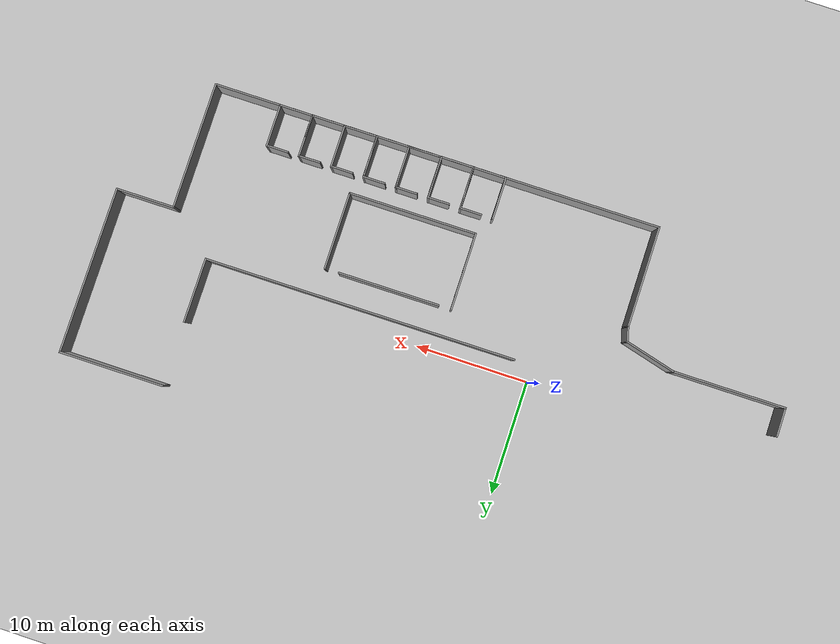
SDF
<sdf version="1.6">
 <world name="default">
  <model name="ground_plane">
   <static>1</static>
   <link name="link">
    <collision name="collision">
     <geometry><plane><normal>0 0 1</normal><size>100 100</size></plane></geometry>
     <surface><friction><ode><mu>100</mu><mu2>50</mu2></ode></friction></surface>
    </collision>
    <visual name="visual">
     <cast_shadows>0</cast_shadows>
     <geometry><plane><normal>0 0 1</normal><size>100 100</size></plane></geometry>
     <material>
      <script><uri>file://media/materials/scripts/gazebo.material</uri><name>Gazebo/Grey</name></script>
     </material>
    </visual>
   </link>
  </model>
  <model name="Floor5">
   <link name="Wall_16">
    <pose>6.84345 1.622 0 0 -0 0</pose>
    <inertial>
     <inertia><ixx>0</ixx><ixy>0</ixy><ixz>0</ixz><iyy>0</iyy><iyz>0</iyz><izz>0</izz></inertia>
     <mass>0</mass>
    </inertial>
    <visual name="Wall_16_Visual">
     <pose>0 0 1.25 0 -0 0</pose>
     <geometry><box><size>27.5952 0.15 2.5</size></box></geometry>
     <material>
      <script><uri>file://media/materials/scripts/gazebo.material</uri><name>Gazebo/Grey</name></script>
      <ambient>1 1 1 1</ambient>
      <shader type="pixel"/>
     </material>
     <meta><layer>0</layer></meta>
    </visual>
    <collision name="Wall_16_Collision">
     <pose>0 0 1.25 0 -0 0</pose>
     <geometry><box><size>27.5952 0.15 2.5</size></box></geometry>
     <surface>
      <friction>
       <ode><mu>1</mu><mu2>1</mu2><fdir1>0 0 0</fdir1><slip1>0</slip1><slip2>0</slip2></ode>
       <torsional>
        <coefficient>1</coefficient>
        <patch_radius>0</patch_radius>
        <surface_radius>0</surface_radius>
        <use_patch_radius>1</use_patch_radius>
        <ode><slip>0</slip></ode>
       </torsional>
      </friction>
      <bounce><restitution_coefficient>0</restitution_coefficient><threshold>1e+06</threshold></bounce>
      <contact>
       <collide_without_contact>0</collide_without_contact>
       <collide_without_contact_bitmask>1</collide_without_contact_bitmask>
       <collide_bitmask>1</collide_bitmask>
       <ode>
        <soft_cfm>0</soft_cfm>
        <soft_erp>0.2</soft_erp>
        <kp>1e+13</kp>
        <kd>1</kd>
        <max_vel>0.01</max_vel>
        <min_depth>0</min_depth>
       </ode>
       <bullet>
        <split_impulse>1</split_impulse>
        <split_impulse_penetration_threshold>-0.01</split_impulse_penetration_threshold>
        <soft_cfm>0</soft_cfm>
        <soft_erp>0.2</soft_erp>
        <kp>1e+13</kp>
        <kd>1</kd>
       </bullet>
      </contact>
     </surface>
    </collision>
   </link>
   <link name="Wall_17">
    <pose>20.6316 4.41059 0 0 -0 1.5708</pose>
    <inertial>
     <inertia><ixx>0</ixx><ixy>0</ixy><ixz>0</ixz><iyy>0</iyy><iyz>0</iyz><izz>0</izz></inertia>
     <mass>0</mass>
    </inertial>
    <visual name="Wall_17_Visual">
     <pose>0 0 1.25 0 -0 0</pose>
     <geometry><box><size>5.7381 0.15 2.5</size></box></geometry>
     <material>
      <script><uri>file://media/materials/scripts/gazebo.material</uri><name>Gazebo/Grey</name></script>
      <ambient>1 1 1 1</ambient>
      <shader type="pixel"/>
     </material>
     <meta><layer>0</layer></meta>
    </visual>
    <collision name="Wall_17_Collision">
     <pose>0 0 1.25 0 -0 0</pose>
     <geometry><box><size>5.7381 0.15 2.5</size></box></geometry>
     <surface>
      <friction>
       <ode><mu>1</mu><mu2>1</mu2><fdir1>0 0 0</fdir1><slip1>0</slip1><slip2>0</slip2></ode>
       <torsional>
        <coefficient>1</coefficient>
        <patch_radius>0</patch_radius>
        <surface_radius>0</surface_radius>
        <use_patch_radius>1</use_patch_radius>
        <ode><slip>0</slip></ode>
       </torsional>
      </friction>
      <bounce><restitution_coefficient>0</restitution_coefficient><threshold>1e+06</threshold></bounce>
      <contact>
       <collide_without_contact>0</collide_without_contact>
       <collide_without_contact_bitmask>1</collide_without_contact_bitmask>
       <collide_bitmask>1</collide_bitmask>
       <ode>
        <soft_cfm>0</soft_cfm>
        <soft_erp>0.2</soft_erp>
        <kp>1e+13</kp>
        <kd>1</kd>
        <max_vel>0.01</max_vel>
        <min_depth>0</min_depth>
       </ode>
       <bullet>
        <split_impulse>1</split_impulse>
        <split_impulse_penetration_threshold>-0.01</split_impulse_penetration_threshold>
        <soft_cfm>0</soft_cfm>
        <soft_erp>0.2</soft_erp>
        <kp>1e+13</kp>
        <kd>1</kd>
       </bullet>
      </contact>
     </surface>
    </collision>
   </link>
   <link name="Wall_18">
    <pose>25.2001 12.902 0 0 -0 0</pose>
    <visual name="Wall_18_Visual">
     <pose>0 0 1.25 0 -0 0</pose>
     <geometry><box><size>9.287 0.15 2.5</size></box></geometry>
     <material>
      <script><uri>file://media/materials/scripts/gazebo.material</uri><name>Gazebo/Grey</name></script>
      <ambient>1 1 1 1</ambient>
      <shader type="pixel"/>
     </material>
     <meta><layer>0</layer></meta>
    </visual>
    <collision name="Wall_18_Collision">
     <pose>0 0 1.25 0 -0 0</pose>
     <geometry><box><size>9.287 0.15 2.5</size></box></geometry>
     <surface>
      <friction>
       <ode><mu>1</mu><mu2>1</mu2><fdir1>0 0 0</fdir1><slip1>0</slip1><slip2>0</slip2></ode>
       <torsional>
        <coefficient>1</coefficient>
        <patch_radius>0</patch_radius>
        <surface_radius>0</surface_radius>
        <use_patch_radius>1</use_patch_radius>
        <ode><slip>0</slip></ode>
       </torsional>
      </friction>
      <bounce><restitution_coefficient>0</restitution_coefficient><threshold>1e+06</threshold></bounce>
      <contact>
       <collide_without_contact>0</collide_without_contact>
       <collide_without_contact_bitmask>1</collide_without_contact_bitmask>
       <collide_bitmask>1</collide_bitmask>
       <ode>
        <soft_cfm>0</soft_cfm>
        <soft_erp>0.2</soft_erp>
        <kp>1e+13</kp>
        <kd>1</kd>
        <max_vel>0.01</max_vel>
        <min_depth>0</min_depth>
       </ode>
       <bullet>
        <split_impulse>1</split_impulse>
        <split_impulse_penetration_threshold>-0.01</split_impulse_penetration_threshold>
        <soft_cfm>0</soft_cfm>
        <soft_erp>0.2</soft_erp>
        <kp>1e+13</kp>
        <kd>1</kd>
       </bullet>
      </contact>
     </surface>
    </collision>
   </link>
   <link name="Wall_19">
    <pose>29.7686 5.595 0 0 0 -1.5708</pose>
    <visual name="Wall_19_Visual">
     <pose>0 0 1.25 0 -0 0</pose>
     <geometry><box><size>14.764 0.15 2.5</size></box></geometry>
     <material>
      <script><uri>file://media/materials/scripts/gazebo.material</uri><name>Gazebo/Grey</name></script>
      <ambient>1 1 1 1</ambient>
      <shader type="pixel"/>
     </material>
     <meta><layer>0</layer></meta>
    </visual>
    <collision name="Wall_19_Collision">
     <pose>0 0 1.25 0 -0 0</pose>
     <geometry><box><size>14.764 0.15 2.5</size></box></geometry>
     <surface>
      <friction>
       <ode><mu>1</mu><mu2>1</mu2><fdir1>0 0 0</fdir1><slip1>0</slip1><slip2>0</slip2></ode>
       <torsional>
        <coefficient>1</coefficient>
        <patch_radius>0</patch_radius>
        <surface_radius>0</surface_radius>
        <use_patch_radius>1</use_patch_radius>
        <ode><slip>0</slip></ode>
       </torsional>
      </friction>
      <bounce><restitution_coefficient>0</restitution_coefficient><threshold>1e+06</threshold></bounce>
      <contact>
       <collide_without_contact>0</collide_without_contact>
       <collide_without_contact_bitmask>1</collide_without_contact_bitmask>
       <collide_bitmask>1</collide_bitmask>
       <ode>
        <soft_cfm>0</soft_cfm>
        <soft_erp>0.2</soft_erp>
        <kp>1e+13</kp>
        <kd>1</kd>
        <max_vel>0.01</max_vel>
        <min_depth>0</min_depth>
       </ode>
       <bullet>
        <split_impulse>1</split_impulse>
        <split_impulse_penetration_threshold>-0.01</split_impulse_penetration_threshold>
        <soft_cfm>0</soft_cfm>
        <soft_erp>0.2</soft_erp>
        <kp>1e+13</kp>
        <kd>1</kd>
       </bullet>
      </contact>
     </surface>
    </collision>
   </link>
   <link name="Wall_20">
    <pose>27.2241 -1.712 0 0 -0 3.14159</pose>
    <visual name="Wall_20_Visual">
     <pose>0 0 1.25 0 -0 0</pose>
     <geometry><box><size>5.239 0.15 2.5</size></box></geometry>
     <material>
      <script><uri>file://media/materials/scripts/gazebo.material</uri><name>Gazebo/Grey</name></script>
      <ambient>1 1 1 1</ambient>
      <shader type="pixel"/>
     </material>
     <meta><layer>0</layer></meta>
    </visual>
    <collision name="Wall_20_Collision">
     <pose>0 0 1.25 0 -0 0</pose>
     <geometry><box><size>5.239 0.15 2.5</size></box></geometry>
     <surface>
      <friction>
       <ode><mu>1</mu><mu2>1</mu2><fdir1>0 0 0</fdir1><slip1>0</slip1><slip2>0</slip2></ode>
       <torsional>
        <coefficient>1</coefficient>
        <patch_radius>0</patch_radius>
        <surface_radius>0</surface_radius>
        <use_patch_radius>1</use_patch_radius>
        <ode><slip>0</slip></ode>
       </torsional>
      </friction>
      <bounce><restitution_coefficient>0</restitution_coefficient><threshold>1e+06</threshold></bounce>
      <contact>
       <collide_without_contact>0</collide_without_contact>
       <collide_without_contact_bitmask>1</collide_without_contact_bitmask>
       <collide_bitmask>1</collide_bitmask>
       <ode>
        <soft_cfm>0</soft_cfm>
        <soft_erp>0.2</soft_erp>
        <kp>1e+13</kp>
        <kd>1</kd>
        <max_vel>0.01</max_vel>
        <min_depth>0</min_depth>
       </ode>
       <bullet>
        <split_impulse>1</split_impulse>
        <split_impulse_penetration_threshold>-0.01</split_impulse_penetration_threshold>
        <soft_cfm>0</soft_cfm>
        <soft_erp>0.2</soft_erp>
        <kp>1e+13</kp>
        <kd>1</kd>
       </bullet>
      </contact>
     </surface>
    </collision>
   </link>
   <link name="Wall_21">
    <pose>24.6796 -7.307 0 0 0 -1.5708</pose>
    <visual name="Wall_21_Visual">
     <pose>0 0 1.25 0 -0 0</pose>
     <geometry><box><size>11.34 0.15 2.5</size></box></geometry>
     <material>
      <script><uri>file://media/materials/scripts/gazebo.material</uri><name>Gazebo/Grey</name></script>
      <ambient>1 1 1 1</ambient>
      <shader type="pixel"/>
     </material>
     <meta><layer>0</layer></meta>
    </visual>
    <collision name="Wall_21_Collision">
     <pose>0 0 1.25 0 -0 0</pose>
     <geometry><box><size>11.34 0.15 2.5</size></box></geometry>
     <surface>
      <friction>
       <ode><mu>1</mu><mu2>1</mu2><fdir1>0 0 0</fdir1><slip1>0</slip1><slip2>0</slip2></ode>
       <torsional>
        <coefficient>1</coefficient>
        <patch_radius>0</patch_radius>
        <surface_radius>0</surface_radius>
        <use_patch_radius>1</use_patch_radius>
        <ode><slip>0</slip></ode>
       </torsional>
      </friction>
      <bounce><restitution_coefficient>0</restitution_coefficient><threshold>1e+06</threshold></bounce>
      <contact>
       <collide_without_contact>0</collide_without_contact>
       <collide_without_contact_bitmask>1</collide_without_contact_bitmask>
       <collide_bitmask>1</collide_bitmask>
       <ode>
        <soft_cfm>0</soft_cfm>
        <soft_erp>0.2</soft_erp>
        <kp>1e+13</kp>
        <kd>1</kd>
        <max_vel>0.01</max_vel>
        <min_depth>0</min_depth>
       </ode>
       <bullet>
        <split_impulse>1</split_impulse>
        <split_impulse_penetration_threshold>-0.01</split_impulse_penetration_threshold>
        <soft_cfm>0</soft_cfm>
        <soft_erp>0.2</soft_erp>
        <kp>1e+13</kp>
        <kd>1</kd>
       </bullet>
      </contact>
     </surface>
    </collision>
   </link>
   <link name="Wall_22">
    <pose>4.7546 -12.902 0 0 -0 3.14159</pose>
    <visual name="Wall_22_Visual">
     <pose>0 0 1.25 0 -0 0</pose>
     <geometry><box><size>40 0.15 2.5</size></box></geometry>
     <material>
      <script><uri>file://media/materials/scripts/gazebo.material</uri><name>Gazebo/Grey</name></script>
      <ambient>1 1 1 1</ambient>
      <shader type="pixel"/>
     </material>
     <meta><layer>0</layer></meta>
    </visual>
    <collision name="Wall_22_Collision">
     <pose>0 0 1.25 0 -0 0</pose>
     <geometry><box><size>40 0.15 2.5</size></box></geometry>
     <surface>
      <friction>
       <ode><mu>1</mu><mu2>1</mu2><fdir1>0 0 0</fdir1><slip1>0</slip1><slip2>0</slip2></ode>
       <torsional>
        <coefficient>1</coefficient>
        <patch_radius>0</patch_radius>
        <surface_radius>0</surface_radius>
        <use_patch_radius>1</use_patch_radius>
        <ode><slip>0</slip></ode>
       </torsional>
      </friction>
      <bounce><restitution_coefficient>0</restitution_coefficient><threshold>1e+06</threshold></bounce>
      <contact>
       <collide_without_contact>0</collide_without_contact>
       <collide_without_contact_bitmask>1</collide_without_contact_bitmask>
       <collide_bitmask>1</collide_bitmask>
       <ode>
        <soft_cfm>0</soft_cfm>
        <soft_erp>0.2</soft_erp>
        <kp>1e+13</kp>
        <kd>1</kd>
        <max_vel>0.01</max_vel>
        <min_depth>0</min_depth>
       </ode>
       <bullet>
        <split_impulse>1</split_impulse>
        <split_impulse_penetration_threshold>-0.01</split_impulse_penetration_threshold>
        <soft_cfm>0</soft_cfm>
        <soft_erp>0.2</soft_erp>
        <kp>1e+13</kp>
        <kd>1</kd>
       </bullet>
      </contact>
     </surface>
    </collision>
   </link>
   <link name="Wall_23">
    <pose>-15.1704 -8.4525 0 0 -0 1.5708</pose>
    <visual name="Wall_23_Visual">
     <pose>0 0 1.25 0 -0 0</pose>
     <geometry><box><size>9.049 0.15 2.5</size></box></geometry>
     <material>
      <script><uri>file://media/materials/scripts/gazebo.material</uri><name>Gazebo/Grey</name></script>
      <ambient>1 1 1 1</ambient>
      <shader type="pixel"/>
     </material>
     <meta><layer>0</layer></meta>
    </visual>
    <collision name="Wall_23_Collision">
     <pose>0 0 1.25 0 -0 0</pose>
     <geometry><box><size>9.049 0.15 2.5</size></box></geometry>
     <surface>
      <friction>
       <ode><mu>1</mu><mu2>1</mu2><fdir1>0 0 0</fdir1><slip1>0</slip1><slip2>0</slip2></ode>
       <torsional>
        <coefficient>1</coefficient>
        <patch_radius>0</patch_radius>
        <surface_radius>0</surface_radius>
        <use_patch_radius>1</use_patch_radius>
        <ode><slip>0</slip></ode>
       </torsional>
      </friction>
      <bounce><restitution_coefficient>0</restitution_coefficient><threshold>1e+06</threshold></bounce>
      <contact>
       <collide_without_contact>0</collide_without_contact>
       <collide_without_contact_bitmask>1</collide_without_contact_bitmask>
       <collide_bitmask>1</collide_bitmask>
       <ode>
        <soft_cfm>0</soft_cfm>
        <soft_erp>0.2</soft_erp>
        <kp>1e+13</kp>
        <kd>1</kd>
        <max_vel>0.01</max_vel>
        <min_depth>0</min_depth>
       </ode>
       <bullet>
        <split_impulse>1</split_impulse>
        <split_impulse_penetration_threshold>-0.01</split_impulse_penetration_threshold>
        <soft_cfm>0</soft_cfm>
        <soft_erp>0.2</soft_erp>
        <kp>1e+13</kp>
        <kd>1</kd>
       </bullet>
      </contact>
     </surface>
    </collision>
   </link>
   <link name="Wall_24">
    <pose>-15.3359 -3.38529 0 0 -0 1.8326</pose>
    <visual name="Wall_24_Visual">
     <pose>0 0 1.25 0 -0 0</pose>
     <geometry><box><size>1.429 0.15 2.5</size></box></geometry>
     <material>
      <script><uri>file://media/materials/scripts/gazebo.material</uri><name>Gazebo/Grey</name></script>
      <ambient>1 1 1 1</ambient>
      <shader type="pixel"/>
     </material>
     <meta><layer>0</layer></meta>
    </visual>
    <collision name="Wall_24_Collision">
     <pose>0 0 1.25 0 -0 0</pose>
     <geometry><box><size>1.429 0.15 2.5</size></box></geometry>
     <surface>
      <friction>
       <ode><mu>1</mu><mu2>1</mu2><fdir1>0 0 0</fdir1><slip1>0</slip1><slip2>0</slip2></ode>
       <torsional>
        <coefficient>1</coefficient>
        <patch_radius>0</patch_radius>
        <surface_radius>0</surface_radius>
        <use_patch_radius>1</use_patch_radius>
        <ode><slip>0</slip></ode>
       </torsional>
      </friction>
      <bounce><restitution_coefficient>0</restitution_coefficient><threshold>1e+06</threshold></bounce>
      <contact>
       <collide_without_contact>0</collide_without_contact>
       <collide_without_contact_bitmask>1</collide_without_contact_bitmask>
       <collide_bitmask>1</collide_bitmask>
       <ode>
        <soft_cfm>0</soft_cfm>
        <soft_erp>0.2</soft_erp>
        <kp>1e+13</kp>
        <kd>1</kd>
        <max_vel>0.01</max_vel>
        <min_depth>0</min_depth>
       </ode>
       <bullet>
        <split_impulse>1</split_impulse>
        <split_impulse_penetration_threshold>-0.01</split_impulse_penetration_threshold>
        <soft_cfm>0</soft_cfm>
        <soft_erp>0.2</soft_erp>
        <kp>1e+13</kp>
        <kd>1</kd>
       </bullet>
      </contact>
     </surface>
    </collision>
   </link>
   <link name="Wall_25">
    <pose>-17.71 -2.17579 0 0 -0 2.87979</pose>
    <visual name="Wall_25_Visual">
     <pose>0 0 1.25 0 -0 0</pose>
     <geometry><box><size>4.723 0.15 2.5</size></box></geometry>
     <material>
      <script><uri>file://media/materials/scripts/gazebo.material</uri><name>Gazebo/Grey</name></script>
      <ambient>1 1 1 1</ambient>
      <shader type="pixel"/>
     </material>
     <meta><layer>0</layer></meta>
    </visual>
    <collision name="Wall_25_Collision">
     <pose>0 0 1.25 0 -0 0</pose>
     <geometry><box><size>4.723 0.15 2.5</size></box></geometry>
     <surface>
      <friction>
       <ode><mu>1</mu><mu2>1</mu2><fdir1>0 0 0</fdir1><slip1>0</slip1><slip2>0</slip2></ode>
       <torsional>
        <coefficient>1</coefficient>
        <patch_radius>0</patch_radius>
        <surface_radius>0</surface_radius>
        <use_patch_radius>1</use_patch_radius>
        <ode><slip>0</slip></ode>
       </torsional>
      </friction>
      <bounce><restitution_coefficient>0</restitution_coefficient><threshold>1e+06</threshold></bounce>
      <contact>
       <collide_without_contact>0</collide_without_contact>
       <collide_without_contact_bitmask>1</collide_without_contact_bitmask>
       <collide_bitmask>1</collide_bitmask>
       <ode>
        <soft_cfm>0</soft_cfm>
        <soft_erp>0.2</soft_erp>
        <kp>1e+13</kp>
        <kd>1</kd>
        <max_vel>0.01</max_vel>
        <min_depth>0</min_depth>
       </ode>
       <bullet>
        <split_impulse>1</split_impulse>
        <split_impulse_penetration_threshold>-0.01</split_impulse_penetration_threshold>
        <soft_cfm>0</soft_cfm>
        <soft_erp>0.2</soft_erp>
        <kp>1e+13</kp>
        <kd>1</kd>
       </bullet>
      </contact>
     </surface>
    </collision>
   </link>
   <link name="Wall_26">
    <pose>-24.8436 -1.584 0 0 -0 3.14159</pose>
    <visual name="Wall_26_Visual">
     <pose>0 0 1.25 0 -0 0</pose>
     <geometry><box><size>10 0.15 2.5</size></box></geometry>
     <material>
      <script><uri>file://media/materials/scripts/gazebo.material</uri><name>Gazebo/Grey</name></script>
      <ambient>1 1 1 1</ambient>
      <shader type="pixel"/>
     </material>
     <meta><layer>0</layer></meta>
    </visual>
    <collision name="Wall_26_Collision">
     <pose>0 0 1.25 0 -0 0</pose>
     <geometry><box><size>10 0.15 2.5</size></box></geometry>
     <surface>
      <friction>
       <ode><mu>1</mu><mu2>1</mu2><fdir1>0 0 0</fdir1><slip1>0</slip1><slip2>0</slip2></ode>
       <torsional>
        <coefficient>1</coefficient>
        <patch_radius>0</patch_radius>
        <surface_radius>0</surface_radius>
        <use_patch_radius>1</use_patch_radius>
        <ode><slip>0</slip></ode>
       </torsional>
      </friction>
      <bounce><restitution_coefficient>0</restitution_coefficient><threshold>1e+06</threshold></bounce>
      <contact>
       <collide_without_contact>0</collide_without_contact>
       <collide_without_contact_bitmask>1</collide_without_contact_bitmask>
       <collide_bitmask>1</collide_bitmask>
       <ode>
        <soft_cfm>0</soft_cfm>
        <soft_erp>0.2</soft_erp>
        <kp>1e+13</kp>
        <kd>1</kd>
        <max_vel>0.01</max_vel>
        <min_depth>0</min_depth>
       </ode>
       <bullet>
        <split_impulse>1</split_impulse>
        <split_impulse_penetration_threshold>-0.01</split_impulse_penetration_threshold>
        <soft_cfm>0</soft_cfm>
        <soft_erp>0.2</soft_erp>
        <kp>1e+13</kp>
        <kd>1</kd>
       </bullet>
      </contact>
     </surface>
    </collision>
   </link>
   <link name="Wall_27">
    <pose>-29.7686 -0.349001 0 0 -0 1.5708</pose>
    <visual name="Wall_27_Visual">
     <pose>0 0 1.25 0 -0 0</pose>
     <geometry><box><size>2.62 0.15 2.5</size></box></geometry>
     <material>
      <script><uri>file://media/materials/scripts/gazebo.material</uri><name>Gazebo/Grey</name></script>
      <ambient>1 1 1 1</ambient>
      <shader type="pixel"/>
     </material>
     <meta><layer>0</layer></meta>
    </visual>
    <collision name="Wall_27_Collision">
     <pose>0 0 1.25 0 -0 0</pose>
     <geometry><box><size>2.62 0.15 2.5</size></box></geometry>
     <surface>
      <friction>
       <ode><mu>1</mu><mu2>1</mu2><fdir1>0 0 0</fdir1><slip1>0</slip1><slip2>0</slip2></ode>
       <torsional>
        <coefficient>1</coefficient>
        <patch_radius>0</patch_radius>
        <surface_radius>0</surface_radius>
        <use_patch_radius>1</use_patch_radius>
        <ode><slip>0</slip></ode>
       </torsional>
      </friction>
      <bounce><restitution_coefficient>0</restitution_coefficient><threshold>1e+06</threshold></bounce>
      <contact>
       <collide_without_contact>0</collide_without_contact>
       <collide_without_contact_bitmask>1</collide_without_contact_bitmask>
       <collide_bitmask>1</collide_bitmask>
       <ode>
        <soft_cfm>0</soft_cfm>
        <soft_erp>0.2</soft_erp>
        <kp>1e+13</kp>
        <kd>1</kd>
        <max_vel>0.01</max_vel>
        <min_depth>0</min_depth>
       </ode>
       <bullet>
        <split_impulse>1</split_impulse>
        <split_impulse_penetration_threshold>-0.01</split_impulse_penetration_threshold>
        <soft_cfm>0</soft_cfm>
        <soft_erp>0.2</soft_erp>
        <kp>1e+13</kp>
        <kd>1</kd>
       </bullet>
      </contact>
     </surface>
    </collision>
   </link>
   <static>1</static>
   <pose>8.6863 -3.06163 0 0 -0 0</pose>
  </model>
  <model name="329_1">
   <pose>26.0648 -14.1312 0 0 -0 0</pose>
   <link name="Wall_0">
    <collision name="Wall_0_Collision">
     <geometry><box><size>3.81 0.15 2.5</size></box></geometry>
     <pose>0 0 1.25 0 -0 0</pose>
    </collision>
    <visual name="Wall_0_Visual">
     <pose>0 0 1.25 0 -0 0</pose>
     <geometry><box><size>3.81 0.15 2.5</size></box></geometry>
     <material>
      <script><uri>file://media/materials/scripts/gazebo.material</uri><name>Gazebo/Grey</name></script>
      <ambient>1 1 1 1</ambient>
     </material>
     <meta><layer>0</layer></meta>
    </visual>
    <pose>-1.449 0 0 0 -0 -1.5708</pose>
   </link>
   <link name="Wall_1">
    <collision name="Wall_1_Collision">
     <geometry><box><size>3.048 0.15 2.5</size></box></geometry>
     <pose>0 0 1.25 0 -0 0</pose>
    </collision>
    <visual name="Wall_1_Visual">
     <pose>0 0 1.25 0 -0 0</pose>
     <geometry><box><size>3.048 0.15 2.5</size></box></geometry>
     <material>
      <script><uri>file://media/materials/scripts/gazebo.material</uri><name>Gazebo/Grey</name></script>
      <ambient>1 1 1 1</ambient>
     </material>
     <meta><layer>0</layer></meta>
    </visual>
    <pose>-0 -1.83 0 0 -0 0</pose>
   </link>
   <link name="Wall_2">
    <collision name="Wall_2_Collision">
     <geometry><box><size>3.81 0.15 2.5</size></box></geometry>
     <pose>0 0 1.25 0 -0 0</pose>
    </collision>
    <visual name="Wall_2_Visual">
     <pose>0 0 1.25 0 -0 0</pose>
     <geometry><box><size>3.81 0.15 2.5</size></box></geometry>
     <material>
      <script><uri>file://media/materials/scripts/gazebo.material</uri><name>Gazebo/Grey</name></script>
      <ambient>1 1 1 1</ambient>
     </material>
     <meta><layer>0</layer></meta>
    </visual>
    <pose>1.449 0 0 0 -0 1.5708</pose>
   </link>
   <link name="Wall_5">
    <collision name="Wall_5_Collision">
     <geometry><box><size>2 0.15 2.5</size></box></geometry>
     <pose>0 0 1.25 0 -0 0</pose>
    </collision>
    <visual name="Wall_5_Visual">
     <pose>0 0 1.25 0 -0 0</pose>
     <geometry><box><size>2 0.15 2.5</size></box></geometry>
     <material>
      <script><uri>file://media/materials/scripts/gazebo.material</uri><name>Gazebo/Grey</name></script>
      <ambient>1 1 1 1</ambient>
     </material>
     <meta><layer>0</layer></meta>
    </visual>
    <pose>0.524 1.83 0 0 -0 3.14159</pose>
   </link>
   <static>1</static>
  </model>
  <model name="329_2">
   <pose>23.158 -14.1302 0 0 -0 0</pose>
   <link name="Wall_0">
    <collision name="Wall_0_Collision">
     <geometry><box><size>3.81 0.15 2.5</size></box></geometry>
     <pose>0 0 1.25 0 -0 0</pose>
    </collision>
    <visual name="Wall_0_Visual">
     <pose>0 0 1.25 0 -0 0</pose>
     <geometry><box><size>3.81 0.15 2.5</size></box></geometry>
     <material>
      <script><uri>file://media/materials/scripts/gazebo.material</uri><name>Gazebo/Grey</name></script>
      <ambient>1 1 1 1</ambient>
     </material>
     <meta><layer>0</layer></meta>
    </visual>
    <pose>-1.449 0 0 0 -0 -1.5708</pose>
   </link>
   <link name="Wall_1">
    <collision name="Wall_1_Collision">
     <geometry><box><size>3.048 0.15 2.5</size></box></geometry>
     <pose>0 0 1.25 0 -0 0</pose>
    </collision>
    <visual name="Wall_1_Visual">
     <pose>0 0 1.25 0 -0 0</pose>
     <geometry><box><size>3.048 0.15 2.5</size></box></geometry>
     <material>
      <script><uri>file://media/materials/scripts/gazebo.material</uri><name>Gazebo/Grey</name></script>
      <ambient>1 1 1 1</ambient>
     </material>
     <meta><layer>0</layer></meta>
    </visual>
    <pose>-0 -1.83 0 0 -0 0</pose>
   </link>
   <link name="Wall_2">
    <collision name="Wall_2_Collision">
     <geometry><box><size>3.81 0.15 2.5</size></box></geometry>
     <pose>0 0 1.25 0 -0 0</pose>
    </collision>
    <visual name="Wall_2_Visual">
     <pose>0 0 1.25 0 -0 0</pose>
     <geometry><box><size>3.81 0.15 2.5</size></box></geometry>
     <material>
      <script><uri>file://media/materials/scripts/gazebo.material</uri><name>Gazebo/Grey</name></script>
      <ambient>1 1 1 1</ambient>
     </material>
     <meta><layer>0</layer></meta>
    </visual>
    <pose>1.449 0 0 0 -0 1.5708</pose>
   </link>
   <link name="Wall_5">
    <collision name="Wall_5_Collision">
     <geometry><box><size>2 0.15 2.5</size></box></geometry>
     <pose>0 0 1.25 0 -0 0</pose>
    </collision>
    <visual name="Wall_5_Visual">
     <pose>0 0 1.25 0 -0 0</pose>
     <geometry><box><size>2 0.15 2.5</size></box></geometry>
     <material>
      <script><uri>file://media/materials/scripts/gazebo.material</uri><name>Gazebo/Grey</name></script>
      <ambient>1 1 1 1</ambient>
     </material>
     <meta><layer>0</layer></meta>
    </visual>
    <pose>0.524 1.83 0 0 -0 3.14159</pose>
   </link>
   <static>1</static>
  </model>
  <model name="329_3">
   <pose>20.2505 -14.1289 0 0 -0 0</pose>
   <link name="Wall_0">
    <collision name="Wall_0_Collision">
     <geometry><box><size>3.81 0.15 2.5</size></box></geometry>
     <pose>0 0 1.25 0 -0 0</pose>
    </collision>
    <visual name="Wall_0_Visual">
     <pose>0 0 1.25 0 -0 0</pose>
     <geometry><box><size>3.81 0.15 2.5</size></box></geometry>
     <material>
      <script><uri>file://media/materials/scripts/gazebo.material</uri><name>Gazebo/Grey</name></script>
      <ambient>1 1 1 1</ambient>
     </material>
     <meta><layer>0</layer></meta>
    </visual>
    <pose>-1.449 0 0 0 -0 -1.5708</pose>
   </link>
   <link name="Wall_1">
    <collision name="Wall_1_Collision">
     <geometry><box><size>3.048 0.15 2.5</size></box></geometry>
     <pose>0 0 1.25 0 -0 0</pose>
    </collision>
    <visual name="Wall_1_Visual">
     <pose>0 0 1.25 0 -0 0</pose>
     <geometry><box><size>3.048 0.15 2.5</size></box></geometry>
     <material>
      <script><uri>file://media/materials/scripts/gazebo.material</uri><name>Gazebo/Grey</name></script>
      <ambient>1 1 1 1</ambient>
     </material>
     <meta><layer>0</layer></meta>
    </visual>
    <pose>-0 -1.83 0 0 -0 0</pose>
   </link>
   <link name="Wall_2">
    <collision name="Wall_2_Collision">
     <geometry><box><size>3.81 0.15 2.5</size></box></geometry>
     <pose>0 0 1.25 0 -0 0</pose>
    </collision>
    <visual name="Wall_2_Visual">
     <pose>0 0 1.25 0 -0 0</pose>
     <geometry><box><size>3.81 0.15 2.5</size></box></geometry>
     <material>
      <script><uri>file://media/materials/scripts/gazebo.material</uri><name>Gazebo/Grey</name></script>
      <ambient>1 1 1 1</ambient>
     </material>
     <meta><layer>0</layer></meta>
    </visual>
    <pose>1.449 0 0 0 -0 1.5708</pose>
   </link>
   <link name="Wall_5">
    <collision name="Wall_5_Collision">
     <geometry><box><size>2 0.15 2.5</size></box></geometry>
     <pose>0 0 1.25 0 -0 0</pose>
    </collision>
    <visual name="Wall_5_Visual">
     <pose>0 0 1.25 0 -0 0</pose>
     <geometry><box><size>2 0.15 2.5</size></box></geometry>
     <material>
      <script><uri>file://media/materials/scripts/gazebo.material</uri><name>Gazebo/Grey</name></script>
      <ambient>1 1 1 1</ambient>
     </material>
     <meta><layer>0</layer></meta>
    </visual>
    <pose>0.524 1.83 0 0 -0 3.14159</pose>
   </link>
   <static>1</static>
  </model>
  <model name="329_4">
   <pose>17.3415 -14.1254 0 0 -0 0</pose>
   <link name="Wall_0">
    <collision name="Wall_0_Collision">
     <geometry><box><size>3.81 0.15 2.5</size></box></geometry>
     <pose>0 0 1.25 0 -0 0</pose>
    </collision>
    <visual name="Wall_0_Visual">
     <pose>0 0 1.25 0 -0 0</pose>
     <geometry><box><size>3.81 0.15 2.5</size></box></geometry>
     <material>
      <script><uri>file://media/materials/scripts/gazebo.material</uri><name>Gazebo/Grey</name></script>
      <ambient>1 1 1 1</ambient>
     </material>
     <meta><layer>0</layer></meta>
    </visual>
    <pose>-1.449 0 0 0 -0 -1.5708</pose>
   </link>
   <link name="Wall_1">
    <collision name="Wall_1_Collision">
     <geometry><box><size>3.048 0.15 2.5</size></box></geometry>
     <pose>0 0 1.25 0 -0 0</pose>
    </collision>
    <visual name="Wall_1_Visual">
     <pose>0 0 1.25 0 -0 0</pose>
     <geometry><box><size>3.048 0.15 2.5</size></box></geometry>
     <material>
      <script><uri>file://media/materials/scripts/gazebo.material</uri><name>Gazebo/Grey</name></script>
      <ambient>1 1 1 1</ambient>
     </material>
     <meta><layer>0</layer></meta>
    </visual>
    <pose>-0 -1.83 0 0 -0 0</pose>
   </link>
   <link name="Wall_2">
    <collision name="Wall_2_Collision">
     <geometry><box><size>3.81 0.15 2.5</size></box></geometry>
     <pose>0 0 1.25 0 -0 0</pose>
    </collision>
    <visual name="Wall_2_Visual">
     <pose>0 0 1.25 0 -0 0</pose>
     <geometry><box><size>3.81 0.15 2.5</size></box></geometry>
     <material>
      <script><uri>file://media/materials/scripts/gazebo.material</uri><name>Gazebo/Grey</name></script>
      <ambient>1 1 1 1</ambient>
     </material>
     <meta><layer>0</layer></meta>
    </visual>
    <pose>1.449 0 0 0 -0 1.5708</pose>
   </link>
   <link name="Wall_5">
    <collision name="Wall_5_Collision">
     <geometry><box><size>2 0.15 2.5</size></box></geometry>
     <pose>0 0 1.25 0 -0 0</pose>
    </collision>
    <visual name="Wall_5_Visual">
     <pose>0 0 1.25 0 -0 0</pose>
     <geometry><box><size>2 0.15 2.5</size></box></geometry>
     <material>
      <script><uri>file://media/materials/scripts/gazebo.material</uri><name>Gazebo/Grey</name></script>
      <ambient>1 1 1 1</ambient>
     </material>
     <meta><layer>0</layer></meta>
    </visual>
    <pose>0.524 1.83 0 0 -0 3.14159</pose>
   </link>
   <static>1</static>
  </model>
  <model name="329_5">
   <pose>14.4436 -14.1323 0 0 -0 0</pose>
   <link name="Wall_0">
    <collision name="Wall_0_Collision">
     <geometry><box><size>3.81 0.15 2.5</size></box></geometry>
     <pose>0 0 1.25 0 -0 0</pose>
    </collision>
    <visual name="Wall_0_Visual">
     <pose>0 0 1.25 0 -0 0</pose>
     <geometry><box><size>3.81 0.15 2.5</size></box></geometry>
     <material>
      <script><uri>file://media/materials/scripts/gazebo.material</uri><name>Gazebo/Grey</name></script>
      <ambient>1 1 1 1</ambient>
     </material>
     <meta><layer>0</layer></meta>
    </visual>
    <pose>-1.449 0 0 0 -0 -1.5708</pose>
   </link>
   <link name="Wall_1">
    <collision name="Wall_1_Collision">
     <geometry><box><size>3.048 0.15 2.5</size></box></geometry>
     <pose>0 0 1.25 0 -0 0</pose>
    </collision>
    <visual name="Wall_1_Visual">
     <pose>0 0 1.25 0 -0 0</pose>
     <geometry><box><size>3.048 0.15 2.5</size></box></geometry>
     <material>
      <script><uri>file://media/materials/scripts/gazebo.material</uri><name>Gazebo/Grey</name></script>
      <ambient>1 1 1 1</ambient>
     </material>
     <meta><layer>0</layer></meta>
    </visual>
    <pose>-0 -1.83 0 0 -0 0</pose>
   </link>
   <link name="Wall_2">
    <collision name="Wall_2_Collision">
     <geometry><box><size>3.81 0.15 2.5</size></box></geometry>
     <pose>0 0 1.25 0 -0 0</pose>
    </collision>
    <visual name="Wall_2_Visual">
     <pose>0 0 1.25 0 -0 0</pose>
     <geometry><box><size>3.81 0.15 2.5</size></box></geometry>
     <material>
      <script><uri>file://media/materials/scripts/gazebo.material</uri><name>Gazebo/Grey</name></script>
      <ambient>1 1 1 1</ambient>
     </material>
     <meta><layer>0</layer></meta>
    </visual>
    <pose>1.449 0 0 0 -0 1.5708</pose>
   </link>
   <link name="Wall_5">
    <collision name="Wall_5_Collision">
     <geometry><box><size>2 0.15 2.5</size></box></geometry>
     <pose>0 0 1.25 0 -0 0</pose>
    </collision>
    <visual name="Wall_5_Visual">
     <pose>0 0 1.25 0 -0 0</pose>
     <geometry><box><size>2 0.15 2.5</size></box></geometry>
     <material>
      <script><uri>file://media/materials/scripts/gazebo.material</uri><name>Gazebo/Grey</name></script>
      <ambient>1 1 1 1</ambient>
     </material>
     <meta><layer>0</layer></meta>
    </visual>
    <pose>0.524 1.83 0 0 -0 3.14159</pose>
   </link>
   <static>1</static>
  </model>
  <model name="329_6">
   <pose>11.5628 -14.1437 0 0 -0 0</pose>
   <link name="Wall_0">
    <collision name="Wall_0_Collision">
     <geometry><box><size>3.81 0.15 2.5</size></box></geometry>
     <pose>0 0 1.25 0 -0 0</pose>
    </collision>
    <visual name="Wall_0_Visual">
     <pose>0 0 1.25 0 -0 0</pose>
     <geometry><box><size>3.81 0.15 2.5</size></box></geometry>
     <material>
      <script><uri>file://media/materials/scripts/gazebo.material</uri><name>Gazebo/Grey</name></script>
      <ambient>1 1 1 1</ambient>
     </material>
     <meta><layer>0</layer></meta>
    </visual>
    <pose>-1.449 0 0 0 -0 -1.5708</pose>
   </link>
   <link name="Wall_1">
    <collision name="Wall_1_Collision">
     <geometry><box><size>3.048 0.15 2.5</size></box></geometry>
     <pose>0 0 1.25 0 -0 0</pose>
    </collision>
    <visual name="Wall_1_Visual">
     <pose>0 0 1.25 0 -0 0</pose>
     <geometry><box><size>3.048 0.15 2.5</size></box></geometry>
     <material>
      <script><uri>file://media/materials/scripts/gazebo.material</uri><name>Gazebo/Grey</name></script>
      <ambient>1 1 1 1</ambient>
     </material>
     <meta><layer>0</layer></meta>
    </visual>
    <pose>-0 -1.83 0 0 -0 0</pose>
   </link>
   <link name="Wall_2">
    <collision name="Wall_2_Collision">
     <geometry><box><size>3.81 0.15 2.5</size></box></geometry>
     <pose>0 0 1.25 0 -0 0</pose>
    </collision>
    <visual name="Wall_2_Visual">
     <pose>0 0 1.25 0 -0 0</pose>
     <geometry><box><size>3.81 0.15 2.5</size></box></geometry>
     <material>
      <script><uri>file://media/materials/scripts/gazebo.material</uri><name>Gazebo/Grey</name></script>
      <ambient>1 1 1 1</ambient>
     </material>
     <meta><layer>0</layer></meta>
    </visual>
    <pose>1.449 0 0 0 -0 1.5708</pose>
   </link>
   <link name="Wall_5">
    <collision name="Wall_5_Collision">
     <geometry><box><size>2 0.15 2.5</size></box></geometry>
     <pose>0 0 1.25 0 -0 0</pose>
    </collision>
    <visual name="Wall_5_Visual">
     <pose>0 0 1.25 0 -0 0</pose>
     <geometry><box><size>2 0.15 2.5</size></box></geometry>
     <material>
      <script><uri>file://media/materials/scripts/gazebo.material</uri><name>Gazebo/Grey</name></script>
      <ambient>1 1 1 1</ambient>
     </material>
     <meta><layer>0</layer></meta>
    </visual>
    <pose>0.524 1.83 0 0 -0 3.14159</pose>
   </link>
   <static>1</static>
  </model>
  <model name="329_7">
   <pose>8.65701 -14.1256 0 0 -0 0</pose>
   <link name="Wall_0">
    <collision name="Wall_0_Collision">
     <geometry><box><size>3.81 0.15 2.5</size></box></geometry>
     <pose>0 0 1.25 0 -0 0</pose>
    </collision>
    <visual name="Wall_0_Visual">
     <pose>0 0 1.25 0 -0 0</pose>
     <geometry><box><size>3.81 0.15 2.5</size></box></geometry>
     <material>
      <script><uri>file://media/materials/scripts/gazebo.material</uri><name>Gazebo/Grey</name></script>
      <ambient>1 1 1 1</ambient>
     </material>
     <meta><layer>0</layer></meta>
    </visual>
    <pose>-1.449 0 0 0 -0 -1.5708</pose>
   </link>
   <link name="Wall_1">
    <collision name="Wall_1_Collision">
     <geometry><box><size>3.048 0.15 2.5</size></box></geometry>
     <pose>0 0 1.25 0 -0 0</pose>
    </collision>
    <visual name="Wall_1_Visual">
     <pose>0 0 1.25 0 -0 0</pose>
     <geometry><box><size>3.048 0.15 2.5</size></box></geometry>
     <material>
      <script><uri>file://media/materials/scripts/gazebo.material</uri><name>Gazebo/Grey</name></script>
      <ambient>1 1 1 1</ambient>
     </material>
     <meta><layer>0</layer></meta>
    </visual>
    <pose>-0 -1.83 0 0 -0 0</pose>
   </link>
   <link name="Wall_2">
    <collision name="Wall_2_Collision">
     <geometry><box><size>3.81 0.15 2.5</size></box></geometry>
     <pose>0 0 1.25 0 -0 0</pose>
    </collision>
    <visual name="Wall_2_Visual">
     <pose>0 0 1.25 0 -0 0</pose>
     <geometry><box><size>3.81 0.15 2.5</size></box></geometry>
     <material>
      <script><uri>file://media/materials/scripts/gazebo.material</uri><name>Gazebo/Grey</name></script>
      <ambient>1 1 1 1</ambient>
     </material>
     <meta><layer>0</layer></meta>
    </visual>
    <pose>1.449 0 0 0 -0 1.5708</pose>
   </link>
   <link name="Wall_5">
    <collision name="Wall_5_Collision">
     <geometry><box><size>2 0.15 2.5</size></box></geometry>
     <pose>0 0 1.25 0 -0 0</pose>
    </collision>
    <visual name="Wall_5_Visual">
     <pose>0 0 1.25 0 -0 0</pose>
     <geometry><box><size>2 0.15 2.5</size></box></geometry>
     <material>
      <script><uri>file://media/materials/scripts/gazebo.material</uri><name>Gazebo/Grey</name></script>
      <ambient>1 1 1 1</ambient>
     </material>
     <meta><layer>0</layer></meta>
    </visual>
    <pose>0.524 1.83 0 0 -0 3.14159</pose>
   </link>
   <static>1</static>
  </model>
  <model name="507">
   <pose>13.8186 -7.21068 0 0 -0 0</pose>
   <link name="Wall_51">
    <collision name="Wall_51_Collision">
     <geometry><box><size>11.43 0.15 2.5</size></box></geometry>
     <pose>0 0 1.25 0 -0 0</pose>
    </collision>
    <visual name="Wall_51_Visual">
     <pose>0 0 1.25 0 -0 0</pose>
     <geometry><box><size>11.43 0.15 2.5</size></box></geometry>
     <material>
      <script><uri>file://media/materials/scripts/gazebo.material</uri><name>Gazebo/Grey</name></script>
      <ambient>1 1 1 1</ambient>
     </material>
     <meta><layer>0</layer></meta>
    </visual>
    <pose>0 -3.38242 0 0 -0 0</pose>
   </link>
   <link name="Wall_52">
    <collision name="Wall_52_Collision">
     <geometry><box><size>6.906 0.15 2.5</size></box></geometry>
     <pose>0 0 1.25 0 -0 0</pose>
    </collision>
    <visual name="Wall_52_Visual">
     <pose>0 0 1.25 0 -0 0</pose>
     <geometry><box><size>6.906 0.15 2.5</size></box></geometry>
     <material>
      <script><uri>file://media/materials/scripts/gazebo.material</uri><name>Gazebo/Grey</name></script>
      <ambient>1 1 1 1</ambient>
     </material>
     <meta><layer>0</layer></meta>
    </visual>
    <pose>5.64 -0.004417 0 0 -0 1.5708</pose>
   </link>
   <link name="Wall_54">
    <collision name="Wall_54_Collision">
     <geometry><box><size>6.906 0.15 2.5</size></box></geometry>
     <pose>0 0 1.25 0 -0 0</pose>
    </collision>
    <visual name="Wall_54_Visual">
     <pose>0 0 1.25 0 -0 0</pose>
     <geometry><box><size>6.906 0.15 2.5</size></box></geometry>
     <material>
      <script><uri>file://media/materials/scripts/gazebo.material</uri><name>Gazebo/Grey</name></script>
      <ambient>1 1 1 1</ambient>
     </material>
     <meta><layer>0</layer></meta>
    </visual>
    <pose>-5.64 -0.004417 0 0 -0 -1.5708</pose>
   </link>
   <link name="Wall_57">
    <collision name="Wall_57_Collision">
     <geometry><box><size>9 0.15 2.5</size></box></geometry>
     <pose>0 0 1.25 0 -0 0</pose>
    </collision>
    <visual name="Wall_57_Visual">
     <pose>0 0 1.25 0 -0 0</pose>
     <geometry><box><size>9 0.15 2.5</size></box></geometry>
     <material>
      <script><uri>file://media/materials/scripts/gazebo.material</uri><name>Gazebo/Grey</name></script>
      <ambient>1 1 1 1</ambient>
     </material>
     <meta><layer>0</layer></meta>
    </visual>
    <pose>-0.063138 3.38242 0 0 -0 3.14159</pose>
   </link>
   <static>1</static>
  </model>
 </world>
</sdf>
